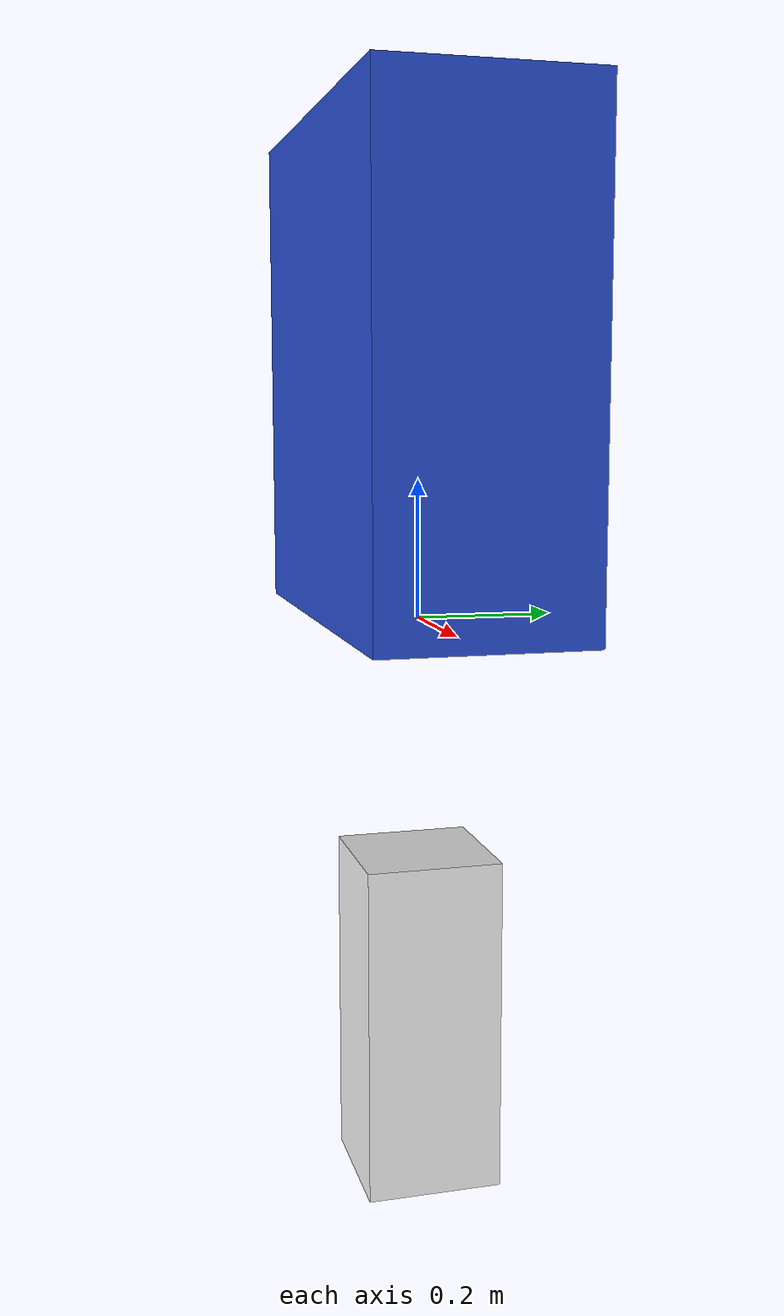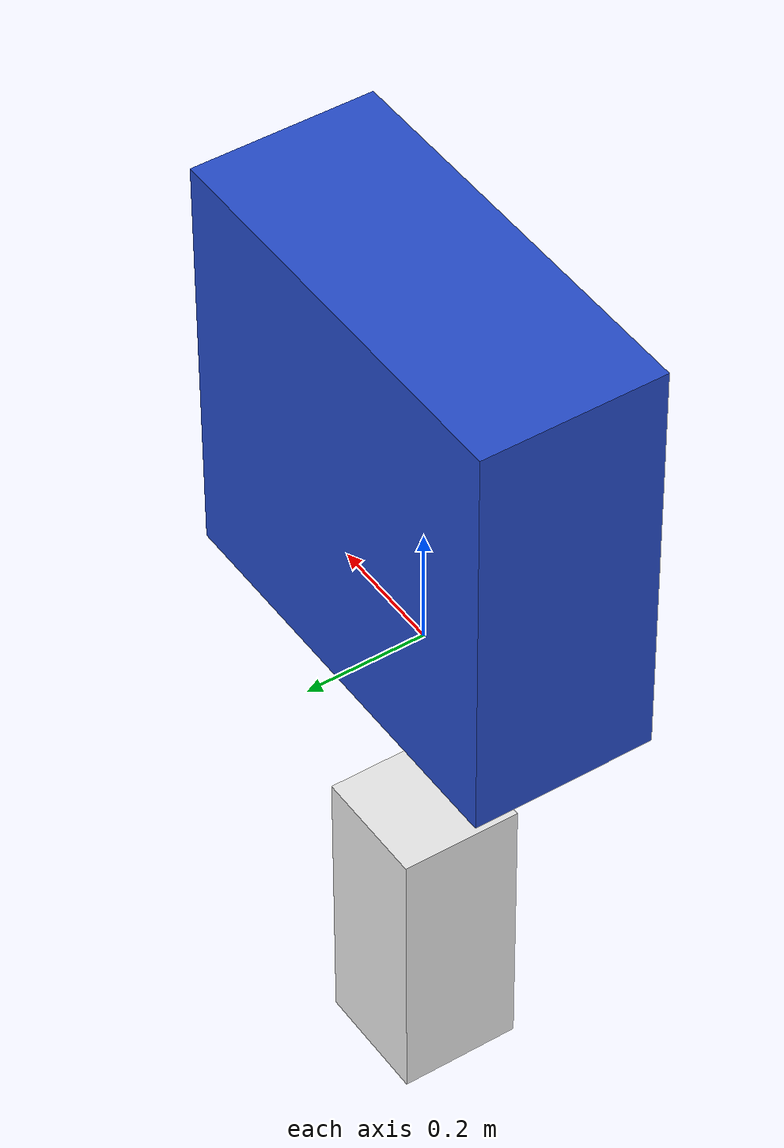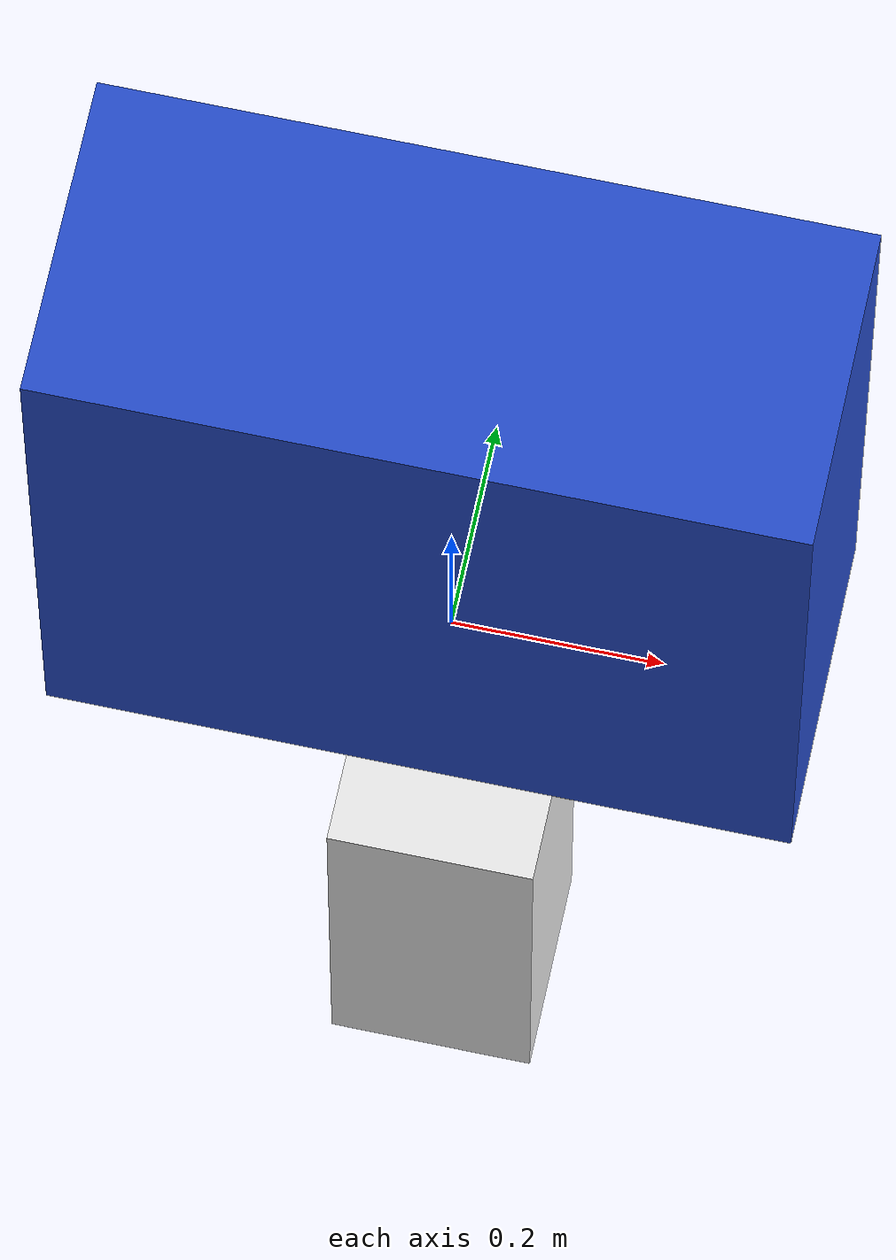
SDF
<sdf version='1.6'>
  <model name='uniped'>
    <link name='torso'>
      <pose frame=''>0 0 0 0 -0 0</pose>
      <inertial>
        <pose frame=''>0 0 1.55 0 -0 0</pose>
        <mass>1</mass>
        <inertia>
          <ixx>0.0483333</ixx>
          <ixy>0</ixy>
          <ixz>0</ixz>
          <iyy>0.0816667</iyy>
          <iyz>0</iyz>
          <izz>0.0483333</izz>
        </inertia>
      </inertial>
      <collision name='torso_collision'>
        <pose frame=''>0 0 1.55 0 -0 0</pose>
        <geometry>
          <box>
            <size>0.7 0.3 0.7</size>
          </box>
        </geometry>
        <surface>
          <contact>
            <ode/>
          </contact>
          <friction>
            <ode/>
          </friction>
        </surface>
      </collision>
      <visual name='torso_visual'>
        <pose frame=''>0 0 0.35 0 -0 0</pose>
        <geometry>
          <box>
            <size>0.7 0.3 0.7</size>
          </box>
        </geometry>
        <material>
          <script>
            <name>Gazebo/Blue</name>
            <uri>file://media/materials/scripts/gazebo.material</uri>
          </script>
        </material>
      </visual>
      <gravity>1</gravity>
      <velocity_decay/>
    </link>
    <link name='tigh'>
      <pose frame=''>0 0 -0.35 0 -0 0</pose>
      <inertial>
        <pose frame=''>0 0 -0.25 0 -0 0</pose>
        <mass>1</mass>
        <inertia>
          <ixx>0.0241667</ixx>
          <ixy>0</ixy>
          <ixz>0</ixz>
          <iyy>0.0241667</iyy>
          <iyz>0</iyz>
          <izz>0.00666667</izz>
        </inertia>
      </inertial>
      <collision name='tigh_collision'>
        <pose frame=''>0 0 -0.25 0 -0 0</pose>
        <geometry>
          <box>
            <size>0.2 0.2 0.5</size>
          </box>
        </geometry>
        <surface>
          <contact>
            <ode/>
          </contact>
          <friction>
            <ode>
              <mu>0.2</mu>
              <mu2>0.2</mu2>
            </ode>
          </friction>
        </surface>
      </collision>
      <visual name='tigh_visual'>
        <pose frame=''>0 0 -0.25 0 -0 0</pose>
        <geometry>
          <box>
            <size>0.2 0.2 0.5</size>
          </box>
        </geometry>
        <material>
          <script>
            <name>Gazebo/White</name>
            <uri>file://media/materials/scripts/gazebo.material</uri>
          </script>
        </material>
      </visual>
      <gravity>1</gravity>
      <velocity_decay/>
    </link>
    <joint name='hip' type='revolute'>
      <child>tigh</child>
      <parent>torso</parent>
      <axis>
        <xyz>1 0 0</xyz>
        <limit>
          <lower>-1e+16</lower>
          <upper>1e+16</upper>
        </limit>
        <dynamics>
          <damping>0.7</damping>
          <friction>0</friction>
          <spring_reference>0</spring_reference>
          <spring_stiffness>0</spring_stiffness>
        </dynamics>
        <use_parent_model_frame>1</use_parent_model_frame>
      </axis>
    </joint>
  </model>
</sdf>
